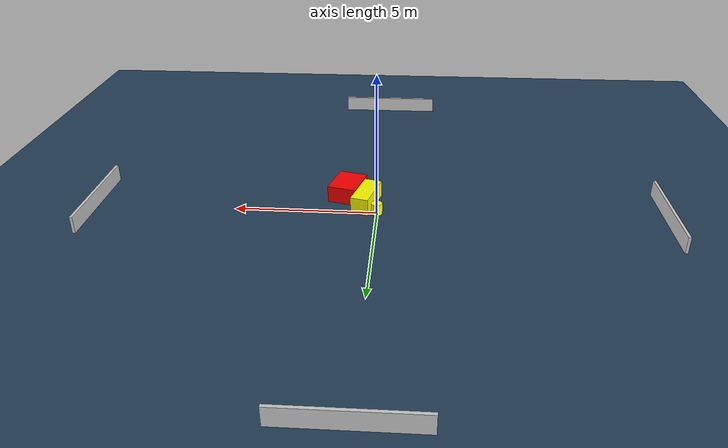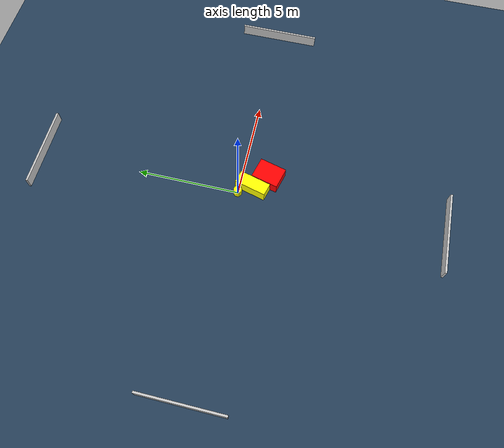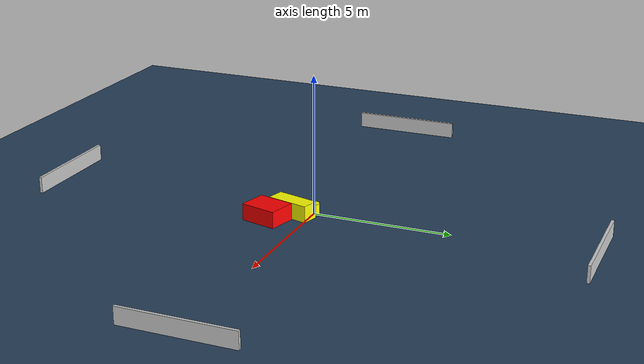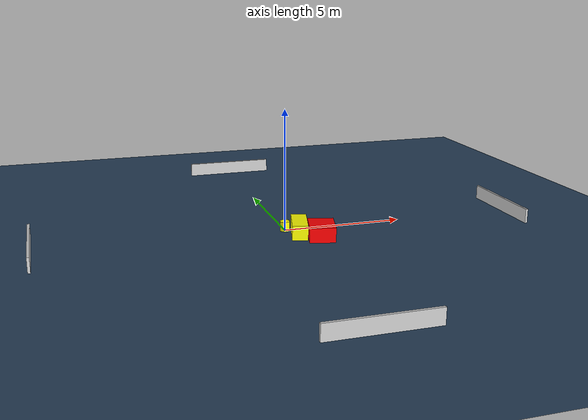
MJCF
<?xml version="1.0" ?>
<mujoco model="generated_environment">
  <option timestep="0.01" integrator="RK4" cone="elliptic"/>
  <default>
    <geom density="1"/>
  </default>
  <asset>
    <texture builtin="gradient" height="3072" name="skybox" rgb1="0.3 0.5 0.7" rgb2="0 0 0" type="skybox" width="512"/>
    <texture builtin="checker" height="300" name="groundplane" rgb1="0.2 0.3 0.4" rgb2="0.1 0.2 0.3" type="2d" width="300"/>
    <material name="groundplane" reflectance="0.2" texrepeat="5 5" texture="groundplane"/>
  </asset>
  <worldbody>
    <light dir="0 0 -1" directional="true" pos="0 0 1.5"/>
    <geom condim="3" friction="0.5 0.005 0.001" material="groundplane" name="floor" pos="0 0 0" size="0 0 0.05" type="plane"/>
    <body name="walls">
      <geom name="wall_1" condim="4" pos="-10.0 0.0 0.3" rgba="0.800000011920929 0.800000011920929 0.800000011920929 1.0" size="0.05 2.0 0.3" type="box"/>
      <geom name="wall_2" condim="4" pos="10.0 0.0 0.3" rgba="0.800000011920929 0.800000011920929 0.800000011920929 1.0" size="0.05 2.0 0.3" type="box"/>
      <geom name="wall_3" condim="4" pos="0.0 -10.0 0.3" rgba="0.800000011920929 0.800000011920929 0.800000011920929 1.0" size="2.0 0.05 0.3" type="box"/>
      <geom name="wall_4" condim="4" pos="0.0 10.0 0.3" rgba="0.800000011920929 0.800000011920929 0.800000011920929 1.0" size="2.0 0.05 0.3" type="box"/>
    </body>
    <body name="robot">
      <joint name="joint_x" type="slide" pos="0 0 0" axis="1 0 0"/>
      <joint name="joint_y" type="slide" pos="0 0 0" axis="0 1 0"/>
      <geom name="robot" type="cylinder" pos="0.0 0.0 0.2" size="0.2 0.2 0.0" mass="5.0" friction="1.0 0.005 0.0001" condim="4" rgba="1.0 1.0 0.0 1.0"/>
    </body>
    <body name="obstacle_1_movable">
      <geom name="obstacle_1_movable" condim="4" pos="0.41266168062294095 -0.6346837183591351 0.3" euler="0 0 255.1706975218421" friction="0.0 0.005 0.001" rgba="1.0 1.0 0.0 1.0" size="0.7798623985441715 0.3151667763736869 0.3" type="box" mass="0.1"/>
      <joint type="free"/>
    </body>
    <body name="obstacle_2_static">
      <geom name="obstacle_2_static" condim="4" pos="1.1330410323138036 -1.2786803134712081 0.3" euler="0 0 345.42617611978125" friction="0.0 0.005 0.001" rgba="1.0 0.0 0.0 1.0" size="0.5217463164712439 0.6675253796212535 0.3" type="box"/>
    </body>
  </worldbody>
  <actuator>
    <motor name="actuator_x" joint="joint_x" gear="1" ctrlrange="-1 1"/>
    <motor name="actuator_y" joint="joint_y" gear="1" ctrlrange="-1 1"/>
  </actuator>
</mujoco>
